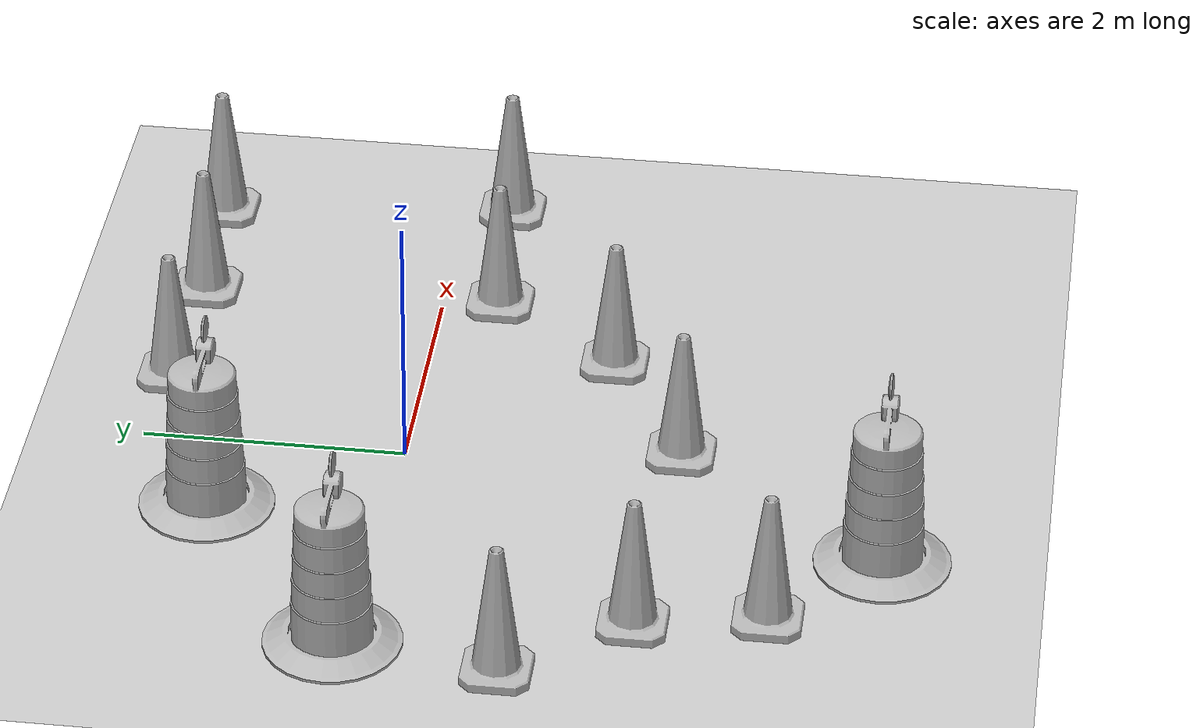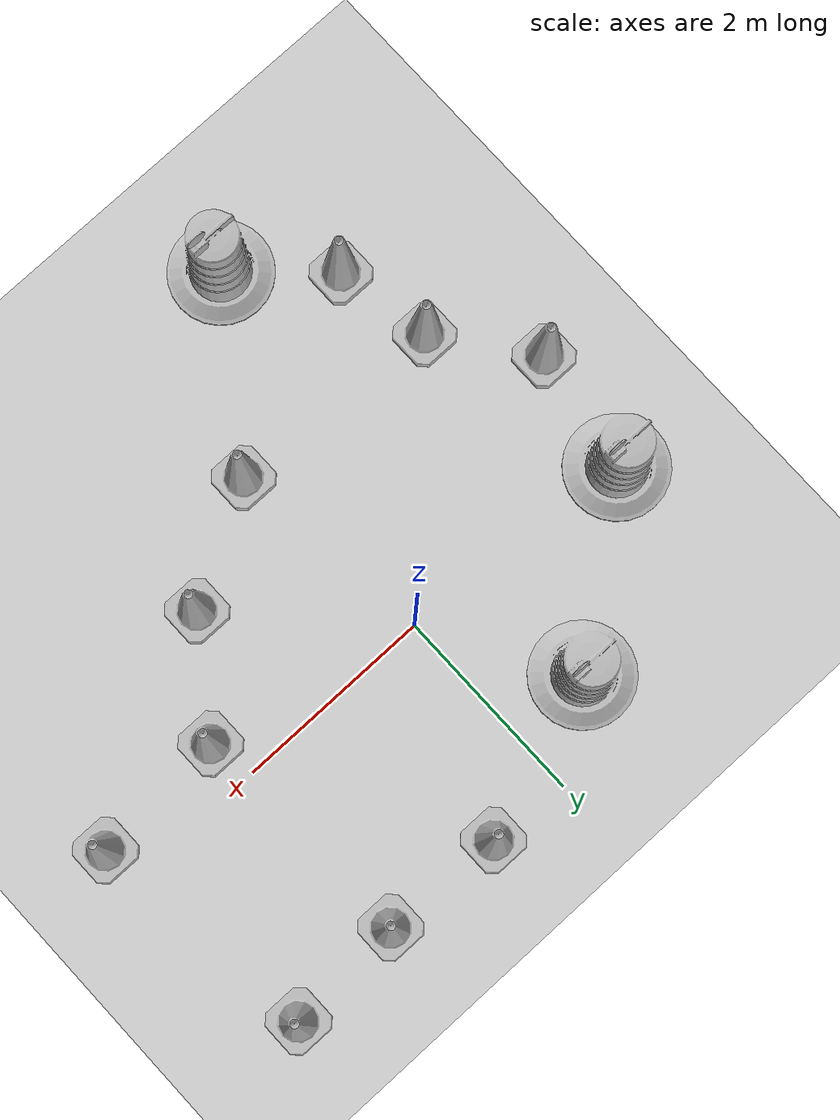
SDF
<sdf version="1.7">
 <world name="default">
  <light name="sun" type="directional">
   <pose>0 0 10 0 -0 0</pose>
   <diffuse>0.8 0.8 0.8 1</diffuse>
   <specular>0.2 0.2 0.2 1</specular>
   <attenuation>
    <range>1000</range>
    <constant>0.9</constant>
    <linear>0.01</linear>
    <quadratic>0.001</quadratic>
   </attenuation>
   <direction>-0.5 0.1 -0.9</direction>
   <spot><inner_angle>0</inner_angle><outer_angle>0</outer_angle><falloff>0</falloff></spot>
  </light>
  <model name="ground_plane">
   <static>1</static>
   <link name="link">
    <collision name="collision">
     <geometry><plane><normal>0 0 1</normal><size>100 100</size></plane></geometry>
     <surface>
      <contact><collide_bitmask>65535</collide_bitmask></contact>
      <friction><ode><mu>100</mu><mu2>50</mu2></ode></friction>
     </surface>
    </collision>
    <visual name="visual">
     <cast_shadows>0</cast_shadows>
     <geometry><plane><normal>0 0 1</normal><size>100 100</size></plane></geometry>
     <material>
      <script><uri>file://media/materials/scripts/gazebo.material</uri><name>Gazebo/Grey</name></script>
     </material>
    </visual>
   </link>
  </model>
  <gravity>0 0 -9.8</gravity>
  <magnetic_field>6e-06 2.3e-05 -4.2e-05</magnetic_field>
  <atmosphere type="adiabatic"/>
  <physics type="ode">
   <max_step_size>0.001</max_step_size>
   <real_time_factor>1</real_time_factor>
   <real_time_update_rate>1000</real_time_update_rate>
  </physics>
  <scene><ambient>0.4 0.4 0.4 1</ambient><background>0.7 0.7 0.7 1</background><shadows>1</shadows></scene>
  <audio><device>default</device></audio>
  <spherical_coordinates>
   <surface_model>EARTH_WGS84</surface_model>
   <latitude_deg>0</latitude_deg>
   <longitude_deg>0</longitude_deg>
   <elevation>0</elevation>
   <heading_deg>0</heading_deg>
  </spherical_coordinates>
  <model name="Construction Barrel">
   <link name="link">
    <inertial>
     <pose>0 0 0.4 0 -0 0</pose>
     <mass>500</mass>
     <inertia><ixx>51.2096</ixx><iyy>51.2096</iyy><izz>25</izz><ixy>0</ixy><ixz>0</ixz><iyz>0</iyz></inertia>
    </inertial>
    <collision name="collision">
     <geometry><mesh><uri>model://construction_barrel/meshes/construction_barrel.dae</uri></mesh></geometry>
    </collision>
    <visual name="visual">
     <geometry><mesh><uri>model://construction_barrel/meshes/construction_barrel.dae</uri></mesh></geometry>
    </visual>
   </link>
   <pose>-0.820738 1.36834 -0 0 0 -2.7e-05</pose>
  </model>
  <model name="Construction Barrel_0">
   <link name="link">
    <inertial>
     <pose>0 0 0.4 0 -0 0</pose>
     <mass>500</mass>
     <inertia><ixx>51.2096</ixx><iyy>51.2096</iyy><izz>25</izz><ixy>0</ixy><ixz>0</ixz><iyz>0</iyz></inertia>
    </inertial>
    <collision name="collision">
     <geometry><mesh><uri>model://construction_barrel/meshes/construction_barrel.dae</uri></mesh></geometry>
    </collision>
    <visual name="visual">
     <geometry><mesh><uri>model://construction_barrel/meshes/construction_barrel.dae</uri></mesh></geometry>
    </visual>
   </link>
   <pose>-2.37317 0.170577 -2e-06 -5e-06 -4e-06 -2.6e-05</pose>
  </model>
  <model name="Construction Cone">
   <link name="link">
    <collision name="collision">
     <geometry>
      <mesh><scale>10 10 10</scale><uri>model://construction_cone/meshes/construction_cone.dae</uri></mesh>
     </geometry>
    </collision>
    <visual name="visual">
     <geometry>
      <mesh><scale>10 10 10</scale><uri>model://construction_cone/meshes/construction_cone.dae</uri></mesh>
     </geometry>
    </visual>
    <inertial>
     <inertia><ixx>1</ixx><ixy>0</ixy><ixz>0</ixz><iyy>1</iyy><iyz>0</iyz><izz>1</izz></inertia>
     <mass>1</mass>
    </inertial>
   </link>
   <pose>0.801899 1.92606 -0 0 -1e-06 0</pose>
  </model>
  <model name="Construction Cone_0">
   <link name="link">
    <collision name="collision">
     <geometry>
      <mesh><scale>10 10 10</scale><uri>model://construction_cone/meshes/construction_cone.dae</uri></mesh>
     </geometry>
    </collision>
    <visual name="visual">
     <geometry>
      <mesh><scale>10 10 10</scale><uri>model://construction_cone/meshes/construction_cone.dae</uri></mesh>
     </geometry>
    </visual>
    <inertial>
     <inertia><ixx>1</ixx><ixy>0</ixy><ixz>0</ixz><iyy>1</iyy><iyz>0</iyz><izz>1</izz></inertia>
     <mass>1</mass>
    </inertial>
   </link>
   <pose>2.10607 -0.447546 -1e-06 2e-06 2e-06 0</pose>
  </model>
  <model name="Construction Cone_1">
   <link name="link">
    <collision name="collision">
     <geometry>
      <mesh><scale>10 10 10</scale><uri>model://construction_cone/meshes/construction_cone.dae</uri></mesh>
     </geometry>
    </collision>
    <visual name="visual">
     <geometry>
      <mesh><scale>10 10 10</scale><uri>model://construction_cone/meshes/construction_cone.dae</uri></mesh>
     </geometry>
    </visual>
    <inertial>
     <inertia><ixx>1</ixx><ixy>0</ixy><ixz>0</ixz><iyy>1</iyy><iyz>0</iyz><izz>1</izz></inertia>
     <mass>1</mass>
    </inertial>
   </link>
   <pose>1.38488 -1.43947 -0 0 -0 0</pose>
  </model>
  <model name="Construction Cone_2">
   <link name="link">
    <collision name="collision">
     <geometry>
      <mesh><scale>10 10 10</scale><uri>model://construction_cone/meshes/construction_cone.dae</uri></mesh>
     </geometry>
    </collision>
    <visual name="visual">
     <geometry>
      <mesh><scale>10 10 10</scale><uri>model://construction_cone/meshes/construction_cone.dae</uri></mesh>
     </geometry>
    </visual>
    <inertial>
     <inertia><ixx>1</ixx><ixy>0</ixy><ixz>0</ixz><iyy>1</iyy><iyz>0</iyz><izz>1</izz></inertia>
     <mass>1</mass>
    </inertial>
   </link>
   <pose>0.241124 -2.07558 -0 0 -1e-06 0</pose>
  </model>
  <model name="Construction Cone_3">
   <link name="link">
    <collision name="collision">
     <geometry>
      <mesh><scale>10 10 10</scale><uri>model://construction_cone/meshes/construction_cone.dae</uri></mesh>
     </geometry>
    </collision>
    <visual name="visual">
     <geometry>
      <mesh><scale>10 10 10</scale><uri>model://construction_cone/meshes/construction_cone.dae</uri></mesh>
     </geometry>
    </visual>
    <inertial>
     <inertia><ixx>1</ixx><ixy>0</ixy><ixz>0</ixz><iyy>1</iyy><iyz>0</iyz><izz>1</izz></inertia>
     <mass>1</mass>
    </inertial>
   </link>
   <pose>-1.90837 -1.94932 -1e-05 0 -0 0</pose>
  </model>
  <model name="Construction Barrel_1">
   <link name="link">
    <inertial>
     <pose>0 0 0.4 0 -0 0</pose>
     <mass>500</mass>
     <inertia><ixx>51.2096</ixx><iyy>51.2096</iyy><izz>25</izz><ixy>0</ixy><ixz>0</ixz><iyz>0</iyz></inertia>
    </inertial>
    <collision name="collision">
     <geometry><mesh><uri>model://construction_barrel/meshes/construction_barrel.dae</uri></mesh></geometry>
    </collision>
    <visual name="visual">
     <geometry><mesh><uri>model://construction_barrel/meshes/construction_barrel.dae</uri></mesh></geometry>
    </visual>
   </link>
   <pose>-0.911025 -3.67791 -1e-06 1e-06 -1e-06 -1.7e-05</pose>
  </model>
  <model name="Construction Cone_4">
   <link name="link">
    <collision name="collision">
     <geometry>
      <mesh><scale>10 10 10</scale><uri>model://construction_cone/meshes/construction_cone.dae</uri></mesh>
     </geometry>
    </collision>
    <visual name="visual">
     <geometry>
      <mesh><scale>10 10 10</scale><uri>model://construction_cone/meshes/construction_cone.dae</uri></mesh>
     </geometry>
    </visual>
    <inertial>
     <inertia><ixx>1</ixx><ixy>0</ixy><ixz>0</ixz><iyy>1</iyy><iyz>0</iyz><izz>1</izz></inertia>
     <mass>1</mass>
    </inertial>
   </link>
   <pose>-2.58855 -1.0512 -0 0 -1e-06 0</pose>
  </model>
  <model name="Construction Cone_5">
   <link name="link">
    <collision name="collision">
     <geometry>
      <mesh><scale>10 10 10</scale><uri>model://construction_cone/meshes/construction_cone.dae</uri></mesh>
     </geometry>
    </collision>
    <visual name="visual">
     <geometry>
      <mesh><scale>10 10 10</scale><uri>model://construction_cone/meshes/construction_cone.dae</uri></mesh>
     </geometry>
    </visual>
    <inertial>
     <inertia><ixx>1</ixx><ixy>0</ixy><ixz>0</ixz><iyy>1</iyy><iyz>0</iyz><izz>1</izz></inertia>
     <mass>1</mass>
    </inertial>
   </link>
   <pose>-1.72935 -2.91176 -0 0 -0 0</pose>
  </model>
  <model name="Construction Cone_6">
   <link name="link">
    <collision name="collision">
     <geometry>
      <mesh><scale>10 10 10</scale><uri>model://construction_cone/meshes/construction_cone.dae</uri></mesh>
     </geometry>
    </collision>
    <visual name="visual">
     <geometry>
      <mesh><scale>10 10 10</scale><uri>model://construction_cone/meshes/construction_cone.dae</uri></mesh>
     </geometry>
    </visual>
    <inertial>
     <inertia><ixx>1</ixx><ixy>0</ixy><ixz>0</ixz><iyy>1</iyy><iyz>0</iyz><izz>1</izz></inertia>
     <mass>1</mass>
    </inertial>
   </link>
   <pose>2.01644 1.87708 -0 0 -0 0</pose>
  </model>
  <model name="Construction Cone_7">
   <link name="link">
    <collision name="collision">
     <geometry>
      <mesh><scale>10 10 10</scale><uri>model://construction_cone/meshes/construction_cone.dae</uri></mesh>
     </geometry>
    </collision>
    <visual name="visual">
     <geometry>
      <mesh><scale>10 10 10</scale><uri>model://construction_cone/meshes/construction_cone.dae</uri></mesh>
     </geometry>
    </visual>
    <inertial>
     <inertia><ixx>1</ixx><ixy>0</ixy><ixz>0</ixz><iyy>1</iyy><iyz>0</iyz><izz>1</izz></inertia>
     <mass>1</mass>
    </inertial>
   </link>
   <pose>3.18481 1.93528 -0 0 1e-06 0</pose>
  </model>
  <model name="Construction Cone_8">
   <link name="link">
    <collision name="collision">
     <geometry>
      <mesh><scale>10 10 10</scale><uri>model://construction_cone/meshes/construction_cone.dae</uri></mesh>
     </geometry>
    </collision>
    <visual name="visual">
     <geometry>
      <mesh><scale>10 10 10</scale><uri>model://construction_cone/meshes/construction_cone.dae</uri></mesh>
     </geometry>
    </visual>
    <inertial>
     <inertia><ixx>1</ixx><ixy>0</ixy><ixz>0</ixz><iyy>1</iyy><iyz>0</iyz><izz>1</izz></inertia>
     <mass>1</mass>
    </inertial>
   </link>
   <pose>3.45108 -0.367978 -0 0 -1e-06 0</pose>
  </model>
 </world>
</sdf>
